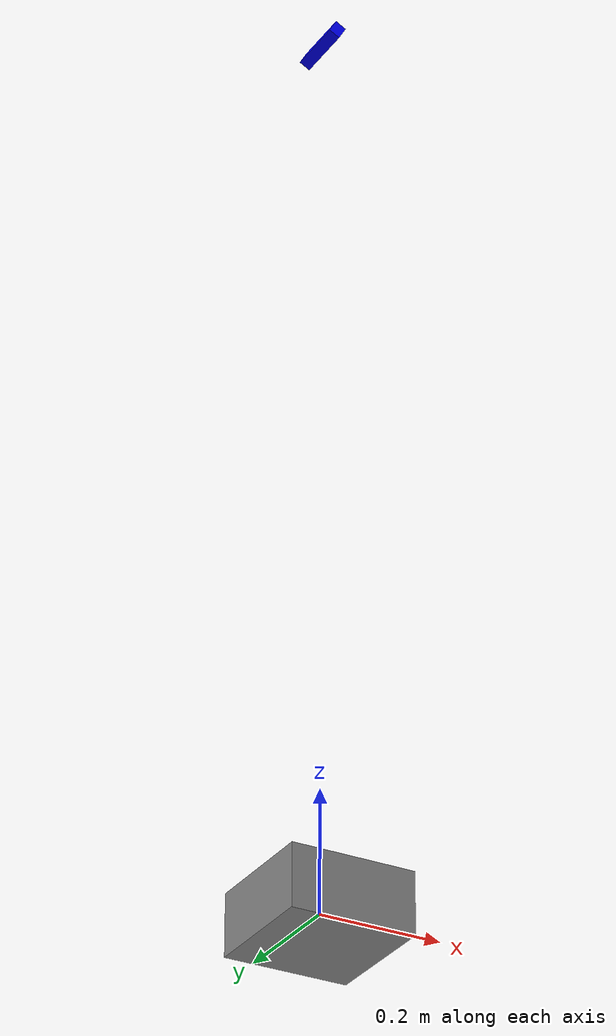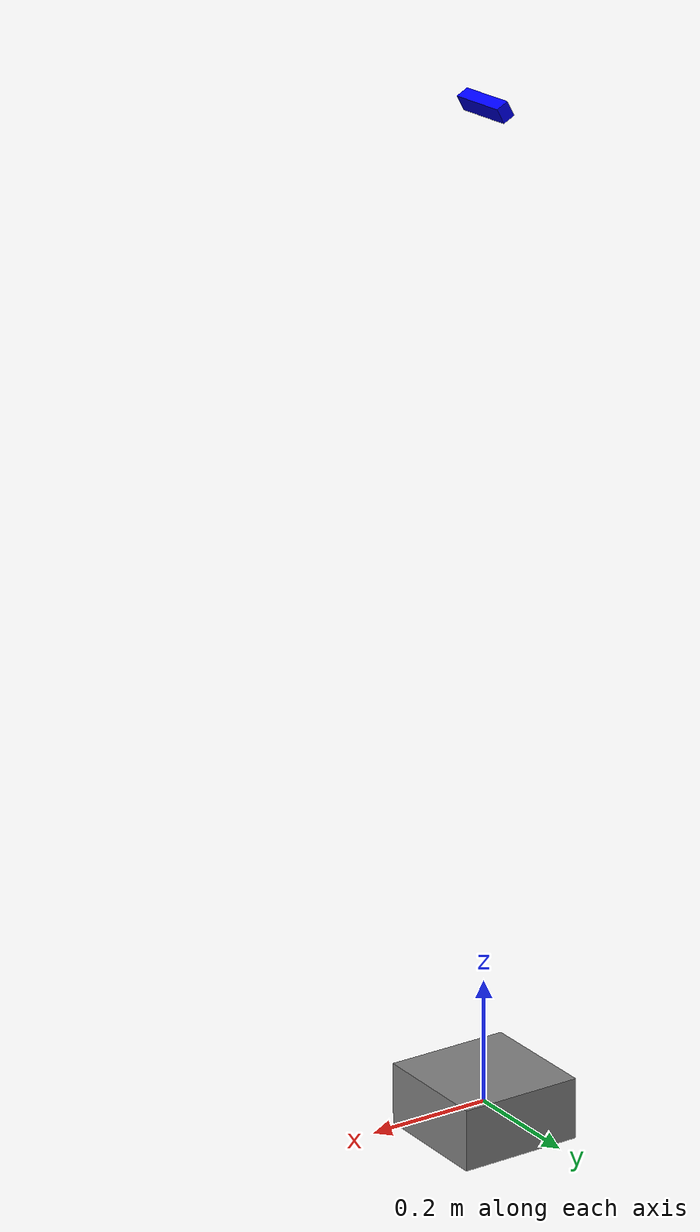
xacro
<?xml version="1.0"?>
<robot name="ghost_camera_rig" xmlns:xacro="http://ros.org/wiki/xacro">

  <link name="dummy_link"/>

  <joint name="dummy_joint" type="fixed">
    <parent link="dummy_link"/>
    <child link="base_link"/>
  </joint>

  <link name="base_link">
    <inertial>
      <mass value="50.0"/>
      <origin xyz="0 0 -0.5" rpy="0 0 0"/>
      <inertia ixx="1.0" ixy="0.0" ixz="0.0" iyy="1.0" iyz="0.0" izz="1.0"/>
    </inertial>

    <visual>
      <geometry>
        <box size="0.2 0.2 0.1"/>
      </geometry>
      <material name="gray">
        <color rgba="0.5 0.5 0.5 1"/>
      </material>
    </visual>

    <collision>
      <geometry>
        <box size="1.0 1.0 0.05"/>
      </geometry>
    </collision>
  </link>

  <link name="camera_mount_link">
    <inertial>
      <mass value="0.1"/>
      <inertia ixx="0.0001" ixy="0.0" ixz="0.0" iyy="0.0001" iyz="0.0" izz="0.0001"/>
    </inertial>
  </link>

  <joint name="height_adjustment_joint" type="prismatic">
    <parent link="base_link"/>
    <child link="camera_mount_link"/>
    <origin xyz="0 0 0.5" rpy="0 0 0"/>
    <axis xyz="0 0 1"/>
    <limit lower="0.1" upper="2.0" effort="100" velocity="1.0"/>
  </joint>

  <link name="camera_link">
    <inertial>
      <mass value="0.1"/>
      <inertia ixx="0.0001" ixy="0.0" ixz="0.0" iyy="0.0001" iyz="0.0" izz="0.0001"/>
    </inertial>
    <visual>
      <geometry>
        <box size="0.02 0.1 0.025"/>
      </geometry>
      <material name="blue">
        <color rgba="0 0 1 1"/>
      </material>
    </visual>
  </link>

  <joint name="pitch_adjustment_joint" type="revolute">
    <parent link="camera_mount_link"/>
    <child link="camera_link"/>
    <origin xyz="0 0 0" rpy="0 0 0"/>
    <axis xyz="0 1 0"/>
    <limit lower="0.30" upper="0.69" effort="100" velocity="1.0"/>
  </joint>

  <joint name="camera_optical_joint" type="fixed">
    <parent link="camera_link"/>
    <child link="camera_depth_optical_frame"/>
    <origin xyz="0 0 0" rpy="-1.5708 0 -1.5708"/>
  </joint>
  <link name="camera_depth_optical_frame"/>

  <gazebo>
    <plugin name="object_controller" filename="libgazebo_ros_planar_move.so">
      <ros>
        <namespace>/</namespace>
      </ros>
      <commandTopic>cmd_vel</commandTopic>
      <odometryTopic>odom</odometryTopic>
      <odometryFrame>odom</odometryFrame>
      <odometryRate>20.0</odometryRate>
      <robotBaseFrame>base_link</robotBaseFrame>
    </plugin>
  </gazebo>

  <gazebo reference="camera_link">
    <sensor type="depth" name="d415_sensor">
      <always_on>true</always_on>
      <update_rate>30.0</update_rate>
      <camera name="camera">
        <horizontal_fov>1.211</horizontal_fov>
        <image>
          <width>1280</width>
          <height>720</height>
          <format>R8G8B8</format>
        </image>
        <clip>
          <near>0.1</near>
          <far>100.0</far>
        </clip>
      </camera>
      <plugin name="camera_controller" filename="libgazebo_ros_camera.so">
        <ros>
          <namespace>camera</namespace>
        </ros>
        <frame_name>camera_depth_optical_frame</frame_name>
        <min_depth>0.16</min_depth>
        <max_depth>10.0</max_depth>
      </plugin>
    </sensor>
  </gazebo>
</robot>
